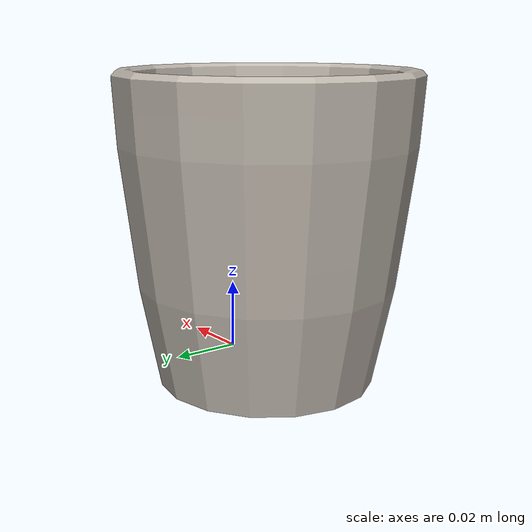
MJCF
<mujoco model="mug_45">
  <compiler angle="radian"/>
  <default>
    <default class="visual">
      <geom group="1" type="mesh" contype="0" conaffinity="0" mass="0.01"/>
    </default>
    <default class="collision">
      <geom group="0" solimp="0.998 0.998 0.001" solref="0.001 2" mass="0.01"/>
    </default>
    <default class="keypoint">
      <site type="sphere" size="0.01" group="3" rgba="1 0 0 1"/>
    </default>
    <default class="grasppoint">
      <site type="sphere" size="0.01" group="4" rgba="0 0 1 0.2"/>
    </default>
  </default>
  <asset>
    <mesh file="visual/model_normalized_0.obj" name="model_normalized_0_vis" scale="0.12 0.12 0.12" refquat="-2.220446049250313e-16 0.0 0.0 1.0"/>
    <mesh file="collision/model_normalized_collision_22.obj" name="model_normalized_collision_22._coll" scale="0.12 0.12 0.12" refquat="-2.220446049250313e-16 0.0 0.0 1.0"/>
    <mesh file="collision/model_normalized_collision_23.obj" name="model_normalized_collision_23._coll" scale="0.12 0.12 0.12" refquat="-2.220446049250313e-16 0.0 0.0 1.0"/>
    <mesh file="collision/model_normalized_collision_21.obj" name="model_normalized_collision_21._coll" scale="0.12 0.12 0.12" refquat="-2.220446049250313e-16 0.0 0.0 1.0"/>
    <mesh file="collision/model_normalized_collision_20.obj" name="model_normalized_collision_20._coll" scale="0.12 0.12 0.12" refquat="-2.220446049250313e-16 0.0 0.0 1.0"/>
    <mesh file="collision/model_normalized_collision_24.obj" name="model_normalized_collision_24._coll" scale="0.12 0.12 0.12" refquat="-2.220446049250313e-16 0.0 0.0 1.0"/>
    <mesh file="collision/model_normalized_collision_30.obj" name="model_normalized_collision_30._coll" scale="0.12 0.12 0.12" refquat="-2.220446049250313e-16 0.0 0.0 1.0"/>
    <mesh file="collision/model_normalized_collision_18.obj" name="model_normalized_collision_18._coll" scale="0.12 0.12 0.12" refquat="-2.220446049250313e-16 0.0 0.0 1.0"/>
    <mesh file="collision/model_normalized_collision_19.obj" name="model_normalized_collision_19._coll" scale="0.12 0.12 0.12" refquat="-2.220446049250313e-16 0.0 0.0 1.0"/>
    <mesh file="collision/model_normalized_collision_31.obj" name="model_normalized_collision_31._coll" scale="0.12 0.12 0.12" refquat="-2.220446049250313e-16 0.0 0.0 1.0"/>
    <mesh file="collision/model_normalized_collision_25.obj" name="model_normalized_collision_25._coll" scale="0.12 0.12 0.12" refquat="-2.220446049250313e-16 0.0 0.0 1.0"/>
    <mesh file="collision/model_normalized_collision_27.obj" name="model_normalized_collision_27._coll" scale="0.12 0.12 0.12" refquat="-2.220446049250313e-16 0.0 0.0 1.0"/>
    <mesh file="collision/model_normalized_collision_26.obj" name="model_normalized_collision_26._coll" scale="0.12 0.12 0.12" refquat="-2.220446049250313e-16 0.0 0.0 1.0"/>
    <mesh file="collision/model_normalized_collision_9.obj" name="model_normalized_collision_9._coll" scale="0.12 0.12 0.12" refquat="-2.220446049250313e-16 0.0 0.0 1.0"/>
    <mesh file="collision/model_normalized_collision_8.obj" name="model_normalized_collision_8._coll" scale="0.12 0.12 0.12" refquat="-2.220446049250313e-16 0.0 0.0 1.0"/>
    <mesh file="collision/model_normalized_collision_6.obj" name="model_normalized_collision_6._coll" scale="0.12 0.12 0.12" refquat="-2.220446049250313e-16 0.0 0.0 1.0"/>
    <mesh file="collision/model_normalized_collision_7.obj" name="model_normalized_collision_7._coll" scale="0.12 0.12 0.12" refquat="-2.220446049250313e-16 0.0 0.0 1.0"/>
    <mesh file="collision/model_normalized_collision_5.obj" name="model_normalized_collision_5._coll" scale="0.12 0.12 0.12" refquat="-2.220446049250313e-16 0.0 0.0 1.0"/>
    <mesh file="collision/model_normalized_collision_4.obj" name="model_normalized_collision_4._coll" scale="0.12 0.12 0.12" refquat="-2.220446049250313e-16 0.0 0.0 1.0"/>
    <mesh file="collision/model_normalized_collision_0.obj" name="model_normalized_collision_0._coll" scale="0.12 0.12 0.12" refquat="-2.220446049250313e-16 0.0 0.0 1.0"/>
    <mesh file="collision/model_normalized_collision_1.obj" name="model_normalized_collision_1._coll" scale="0.12 0.12 0.12" refquat="-2.220446049250313e-16 0.0 0.0 1.0"/>
    <mesh file="collision/model_normalized_collision_3.obj" name="model_normalized_collision_3._coll" scale="0.12 0.12 0.12" refquat="-2.220446049250313e-16 0.0 0.0 1.0"/>
    <mesh file="collision/model_normalized_collision_2.obj" name="model_normalized_collision_2._coll" scale="0.12 0.12 0.12" refquat="-2.220446049250313e-16 0.0 0.0 1.0"/>
    <mesh file="collision/model_normalized_collision_17.obj" name="model_normalized_collision_17._coll" scale="0.12 0.12 0.12" refquat="-2.220446049250313e-16 0.0 0.0 1.0"/>
    <mesh file="collision/model_normalized_collision_16.obj" name="model_normalized_collision_16._coll" scale="0.12 0.12 0.12" refquat="-2.220446049250313e-16 0.0 0.0 1.0"/>
    <mesh file="collision/model_normalized_collision_28.obj" name="model_normalized_collision_28._coll" scale="0.12 0.12 0.12" refquat="-2.220446049250313e-16 0.0 0.0 1.0"/>
    <mesh file="collision/model_normalized_collision_14.obj" name="model_normalized_collision_14._coll" scale="0.12 0.12 0.12" refquat="-2.220446049250313e-16 0.0 0.0 1.0"/>
    <mesh file="collision/model_normalized_collision_15.obj" name="model_normalized_collision_15._coll" scale="0.12 0.12 0.12" refquat="-2.220446049250313e-16 0.0 0.0 1.0"/>
    <mesh file="collision/model_normalized_collision_29.obj" name="model_normalized_collision_29._coll" scale="0.12 0.12 0.12" refquat="-2.220446049250313e-16 0.0 0.0 1.0"/>
    <mesh file="collision/model_normalized_collision_11.obj" name="model_normalized_collision_11._coll" scale="0.12 0.12 0.12" refquat="-2.220446049250313e-16 0.0 0.0 1.0"/>
    <mesh file="collision/model_normalized_collision_10.obj" name="model_normalized_collision_10._coll" scale="0.12 0.12 0.12" refquat="-2.220446049250313e-16 0.0 0.0 1.0"/>
    <mesh file="collision/model_normalized_collision_12.obj" name="model_normalized_collision_12._coll" scale="0.12 0.12 0.12" refquat="-2.220446049250313e-16 0.0 0.0 1.0"/>
    <mesh file="collision/model_normalized_collision_13.obj" name="model_normalized_collision_13._coll" scale="0.12 0.12 0.12" refquat="-2.220446049250313e-16 0.0 0.0 1.0"/>
    <texture type="2d" name="image0" file="visual/image0.png"/>
    <material name="initialShadingGroup.015" texture="image0" specular="0.5" shininess="0.25"/>
  </asset>
  <worldbody>
  <body>
      <body name="object" pos="0 0 0.04" euler="0 0 1.57">
        <geom type="mesh" mesh="model_normalized_0_vis" class="visual" material="initialShadingGroup.015"/>
        <geom type="mesh" mesh="model_normalized_collision_22._coll" class="collision" rgba="0.8 0.8 0.8 0.0"/>
        <geom type="mesh" mesh="model_normalized_collision_23._coll" class="collision" rgba="0.8 0.8 0.8 0.0"/>
        <geom type="mesh" mesh="model_normalized_collision_21._coll" class="collision" rgba="0.8 0.8 0.8 0.0"/>
        <geom type="mesh" mesh="model_normalized_collision_20._coll" class="collision" rgba="0.8 0.8 0.8 0.0"/>
        <geom type="mesh" mesh="model_normalized_collision_24._coll" class="collision" rgba="0.8 0.8 0.8 0.0"/>
        <geom type="mesh" mesh="model_normalized_collision_30._coll" class="collision" rgba="0.8 0.8 0.8 0.0"/>
        <geom type="mesh" mesh="model_normalized_collision_18._coll" class="collision" rgba="0.8 0.8 0.8 0.0"/>
        <geom type="mesh" mesh="model_normalized_collision_19._coll" class="collision" rgba="0.8 0.8 0.8 0.0"/>
        <geom type="mesh" mesh="model_normalized_collision_31._coll" class="collision" rgba="0.8 0.8 0.8 0.0"/>
        <geom type="mesh" mesh="model_normalized_collision_25._coll" class="collision" rgba="0.8 0.8 0.8 0.0"/>
        <geom type="mesh" mesh="model_normalized_collision_27._coll" class="collision" rgba="0.8 0.8 0.8 0.0"/>
        <geom type="mesh" mesh="model_normalized_collision_26._coll" class="collision" rgba="0.8 0.8 0.8 0.0"/>
        <geom type="mesh" mesh="model_normalized_collision_9._coll" class="collision" rgba="0.8 0.8 0.8 0.0"/>
        <geom type="mesh" mesh="model_normalized_collision_8._coll" class="collision" rgba="0.8 0.8 0.8 0.0"/>
        <geom type="mesh" mesh="model_normalized_collision_6._coll" class="collision" rgba="0.8 0.8 0.8 0.0"/>
        <geom type="mesh" mesh="model_normalized_collision_7._coll" class="collision" rgba="0.8 0.8 0.8 0.0"/>
        <geom type="mesh" mesh="model_normalized_collision_5._coll" class="collision" rgba="0.8 0.8 0.8 0.0"/>
        <geom type="mesh" mesh="model_normalized_collision_4._coll" class="collision" rgba="0.8 0.8 0.8 0.0"/>
        <geom type="mesh" mesh="model_normalized_collision_0._coll" class="collision" rgba="0.8 0.8 0.8 0.0"/>
        <geom type="mesh" mesh="model_normalized_collision_1._coll" class="collision" rgba="0.8 0.8 0.8 0.0"/>
        <geom type="mesh" mesh="model_normalized_collision_3._coll" class="collision" rgba="0.8 0.8 0.8 0.0"/>
        <geom type="mesh" mesh="model_normalized_collision_2._coll" class="collision" rgba="0.8 0.8 0.8 0.0"/>
        <geom type="mesh" mesh="model_normalized_collision_17._coll" class="collision" rgba="0.8 0.8 0.8 0.0"/>
        <geom type="mesh" mesh="model_normalized_collision_16._coll" class="collision" rgba="0.8 0.8 0.8 0.0"/>
        <geom type="mesh" mesh="model_normalized_collision_28._coll" class="collision" rgba="0.8 0.8 0.8 0.0"/>
        <geom type="mesh" mesh="model_normalized_collision_14._coll" class="collision" rgba="0.8 0.8 0.8 0.0"/>
        <geom type="mesh" mesh="model_normalized_collision_15._coll" class="collision" rgba="0.8 0.8 0.8 0.0"/>
        <geom type="mesh" mesh="model_normalized_collision_29._coll" class="collision" rgba="0.8 0.8 0.8 0.0"/>
        <geom type="mesh" mesh="model_normalized_collision_11._coll" class="collision" rgba="0.8 0.8 0.8 0.0"/>
        <geom type="mesh" mesh="model_normalized_collision_10._coll" class="collision" rgba="0.8 0.8 0.8 0.0"/>
        <geom type="mesh" mesh="model_normalized_collision_12._coll" class="collision" rgba="0.8 0.8 0.8 0.0"/>
        <geom type="mesh" mesh="model_normalized_collision_13._coll" class="collision" rgba="0.8 0.8 0.8 0.0"/>
      </body>
      <site rgba="0 0 0 0" size="0.005" pos="-8.190899023567955e-05 0.00012100078557558124 -0.0449400648" name="bottom_site"/>
      <site rgba="0 0 0 0" size="0.005" pos="-8.190899023567955e-05 0.00012100078557558124 0.044709894" name="top_site"/>
      <site rgba="0 0 0 0" size="0.005" pos="0.042603244521296886 0.059129149351255274 -0.000115085399999999" name="horizontal_radius_site"/>
      <site class="grasppoint" pos="0.055 0 0.05"/>
      </body>
    </worldbody>
</mujoco>
